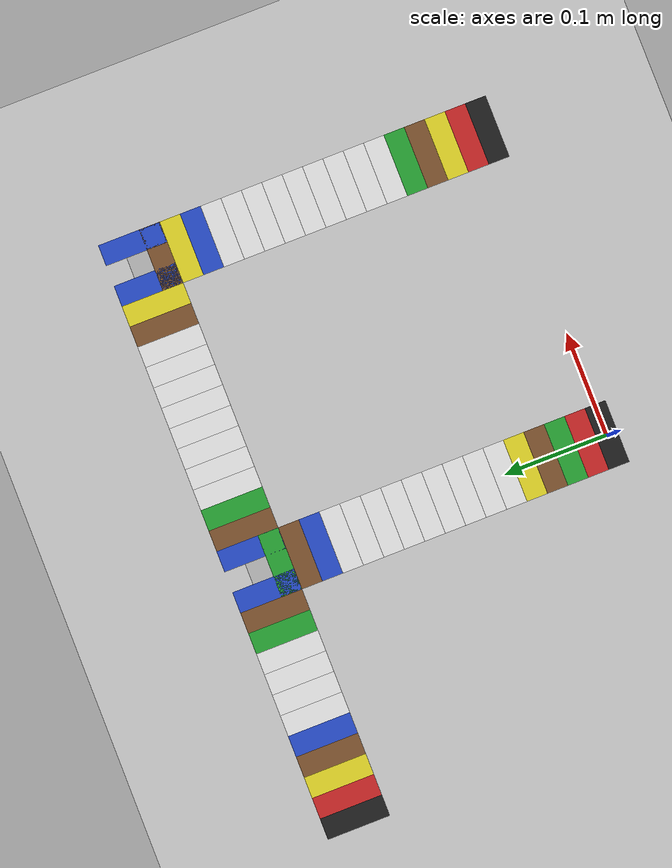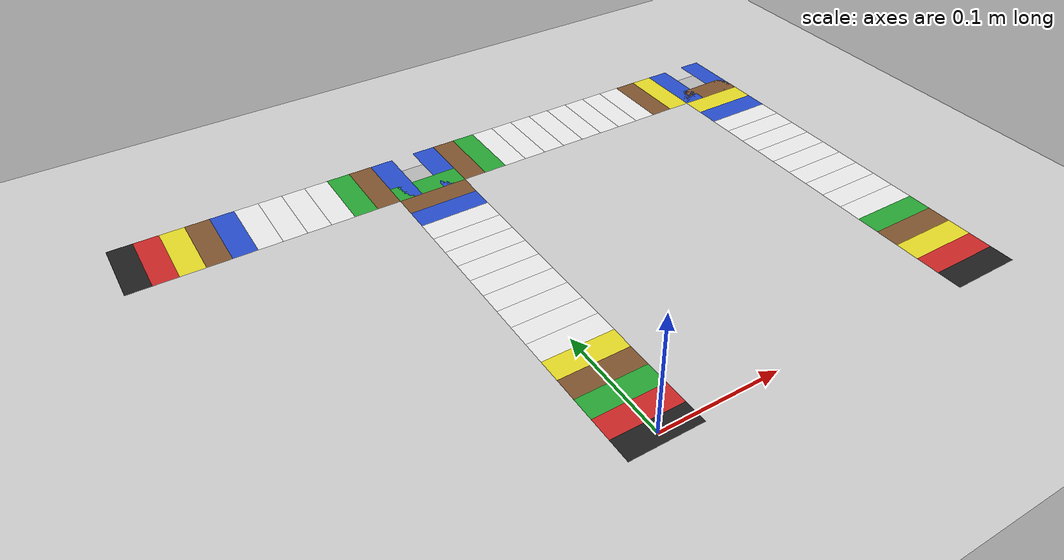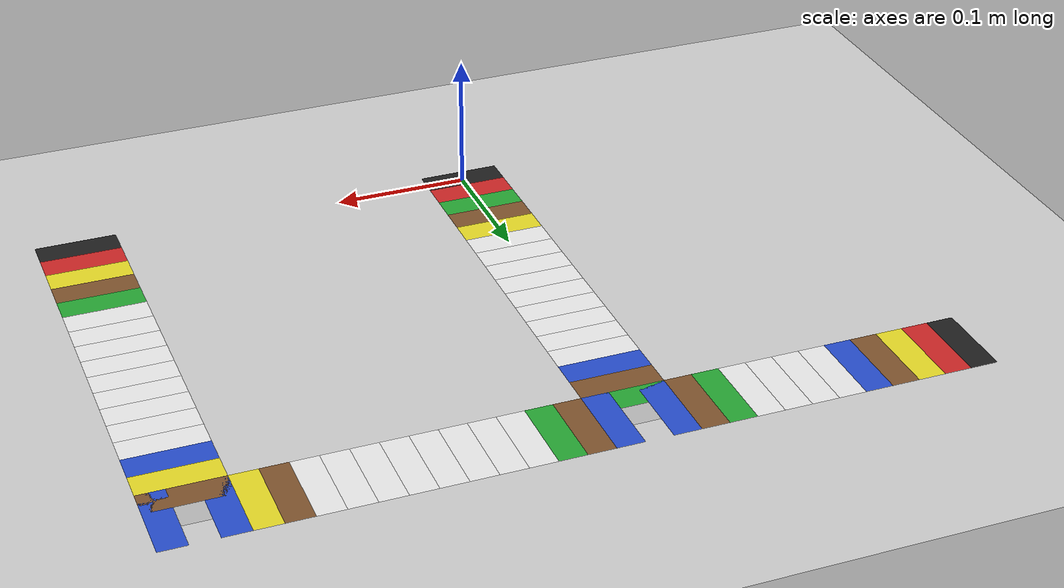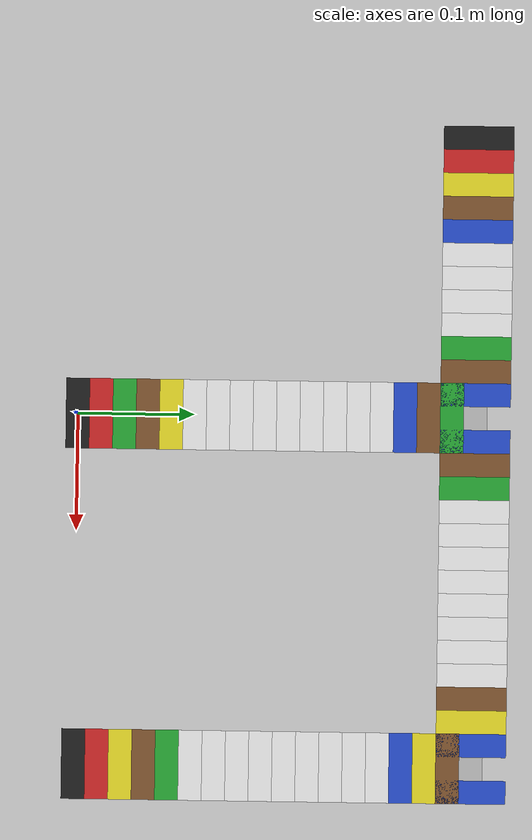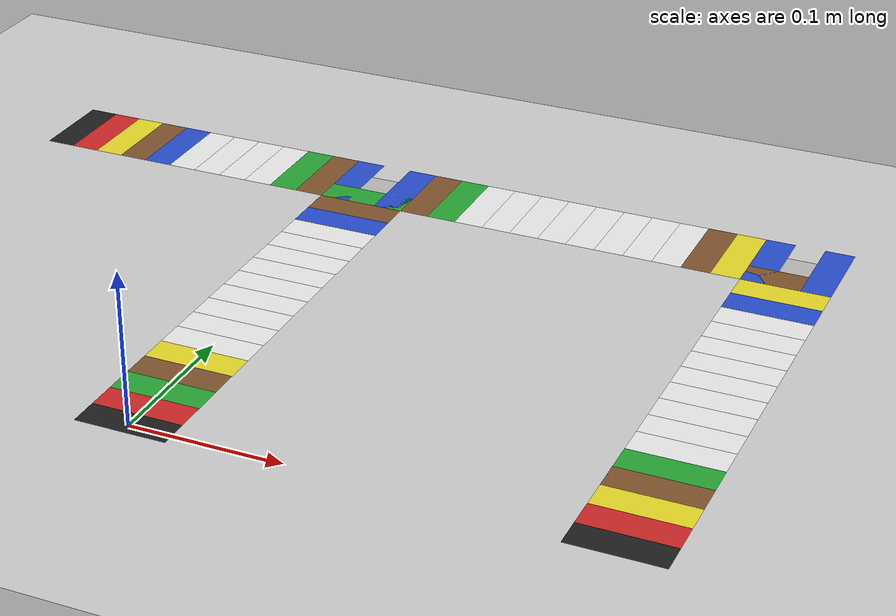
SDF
<sdf version="1.6">
 <world name="maskor_ev3_challenge">
  <model name="tileAC9">
   <pose>0 0.12 0.001 0 -0 0</pose>
   <static>1</static>
   <link name="link">
    <pose>0 0 0.001 0 -0 0</pose>
    <visual name="visual">
     <geometry><mesh><uri>model://maskor_ev3_tile/meshes/ev3_tile.dae</uri><scale>1 1 1</scale></mesh></geometry>
     <material>
      <script>
       <uri>model://maskor_ev3_tile/materials/scripts</uri>
       <uri>model://maskor_ev3_tile/materials/textures</uri>
       <name>white</name>
      </script>
     </material>
    </visual>
   </link>
  </model>
  <model name="tileAC3">
   <pose>0 0 0.001 0 -0 0</pose>
   <static>1</static>
   <link name="link">
    <pose>0 0 0.001 0 -0 0</pose>
    <visual name="visual">
     <geometry><mesh><uri>model://maskor_ev3_tile/meshes/ev3_tile.dae</uri><scale>1 1 1</scale></mesh></geometry>
     <material>
      <script>
       <uri>model://maskor_ev3_tile/materials/scripts</uri>
       <uri>model://maskor_ev3_tile/materials/textures</uri>
       <name>black</name>
      </script>
     </material>
    </visual>
   </link>
  </model>
  <model name="tileAC4">
   <pose>0 0.02 0.001 0 -0 0</pose>
   <static>1</static>
   <link name="link">
    <pose>0 0 0.001 0 -0 0</pose>
    <visual name="visual">
     <geometry><mesh><uri>model://maskor_ev3_tile/meshes/ev3_tile.dae</uri><scale>1 1 1</scale></mesh></geometry>
     <material>
      <script>
       <uri>model://maskor_ev3_tile/materials/scripts</uri>
       <uri>model://maskor_ev3_tile/materials/textures</uri>
       <name>red</name>
      </script>
     </material>
    </visual>
   </link>
  </model>
  <model name="tileAC5">
   <pose>0 0.04 0.001 0 -0 0</pose>
   <static>1</static>
   <link name="link">
    <pose>0 0 0.001 0 -0 0</pose>
    <visual name="visual">
     <geometry><mesh><uri>model://maskor_ev3_tile/meshes/ev3_tile.dae</uri><scale>1 1 1</scale></mesh></geometry>
     <material>
      <script>
       <uri>model://maskor_ev3_tile/materials/scripts</uri>
       <uri>model://maskor_ev3_tile/materials/textures</uri>
       <name>green</name>
      </script>
     </material>
    </visual>
   </link>
  </model>
  <model name="tileAC6">
   <pose>0 0.06 0.001 0 -0 0</pose>
   <static>1</static>
   <link name="link">
    <pose>0 0 0.001 0 -0 0</pose>
    <visual name="visual">
     <geometry><mesh><uri>model://maskor_ev3_tile/meshes/ev3_tile.dae</uri><scale>1 1 1</scale></mesh></geometry>
     <material>
      <script>
       <uri>model://maskor_ev3_tile/materials/scripts</uri>
       <uri>model://maskor_ev3_tile/materials/textures</uri>
       <name>brown</name>
      </script>
     </material>
    </visual>
   </link>
  </model>
  <model name="tileAC7">
   <pose>0 0.08 0.001 0 -0 0</pose>
   <static>1</static>
   <link name="link">
    <pose>0 0 0.001 0 -0 0</pose>
    <visual name="visual">
     <geometry><mesh><uri>model://maskor_ev3_tile/meshes/ev3_tile.dae</uri><scale>1 1 1</scale></mesh></geometry>
     <material>
      <script>
       <uri>model://maskor_ev3_tile/materials/scripts</uri>
       <uri>model://maskor_ev3_tile/materials/textures</uri>
       <name>yellow</name>
      </script>
     </material>
    </visual>
   </link>
  </model>
  <model name="tileAC8">
   <pose>0 0.1 0.001 0 -0 0</pose>
   <static>1</static>
   <link name="link">
    <pose>0 0 0.001 0 -0 0</pose>
    <visual name="visual">
     <geometry><mesh><uri>model://maskor_ev3_tile/meshes/ev3_tile.dae</uri><scale>1 1 1</scale></mesh></geometry>
     <material>
      <script>
       <uri>model://maskor_ev3_tile/materials/scripts</uri>
       <uri>model://maskor_ev3_tile/materials/textures</uri>
       <name>white</name>
      </script>
     </material>
    </visual>
   </link>
  </model>
  <model name="tileAC10">
   <pose>0 0.14 0.001 0 -0 0</pose>
   <static>1</static>
   <link name="link">
    <pose>0 0 0.001 0 -0 0</pose>
    <visual name="visual">
     <geometry><mesh><uri>model://maskor_ev3_tile/meshes/ev3_tile.dae</uri><scale>1 1 1</scale></mesh></geometry>
     <material>
      <script>
       <uri>model://maskor_ev3_tile/materials/scripts</uri>
       <uri>model://maskor_ev3_tile/materials/textures</uri>
       <name>white</name>
      </script>
     </material>
    </visual>
   </link>
  </model>
  <model name="tileAC11">
   <pose>0 0.16 0.001 0 -0 0</pose>
   <static>1</static>
   <link name="link">
    <pose>0 0 0.001 0 -0 0</pose>
    <visual name="visual">
     <geometry><mesh><uri>model://maskor_ev3_tile/meshes/ev3_tile.dae</uri><scale>1 1 1</scale></mesh></geometry>
     <material>
      <script>
       <uri>model://maskor_ev3_tile/materials/scripts</uri>
       <uri>model://maskor_ev3_tile/materials/textures</uri>
       <name>white</name>
      </script>
     </material>
    </visual>
   </link>
  </model>
  <model name="tileAC12">
   <pose>0 0.18 0.001 0 -0 0</pose>
   <static>1</static>
   <link name="link">
    <pose>0 0 0.001 0 -0 0</pose>
    <visual name="visual">
     <geometry><mesh><uri>model://maskor_ev3_tile/meshes/ev3_tile.dae</uri><scale>1 1 1</scale></mesh></geometry>
     <material>
      <script>
       <uri>model://maskor_ev3_tile/materials/scripts</uri>
       <uri>model://maskor_ev3_tile/materials/textures</uri>
       <name>white</name>
      </script>
     </material>
    </visual>
   </link>
  </model>
  <model name="tileAC13">
   <pose>0 0.2 0.001 0 -0 0</pose>
   <static>1</static>
   <link name="link">
    <pose>0 0 0.001 0 -0 0</pose>
    <visual name="visual">
     <geometry><mesh><uri>model://maskor_ev3_tile/meshes/ev3_tile.dae</uri><scale>1 1 1</scale></mesh></geometry>
     <material>
      <script>
       <uri>model://maskor_ev3_tile/materials/scripts</uri>
       <uri>model://maskor_ev3_tile/materials/textures</uri>
       <name>white</name>
      </script>
     </material>
    </visual>
   </link>
  </model>
  <model name="tileAC14">
   <pose>0 0.22 0.001 0 -0 0</pose>
   <static>1</static>
   <link name="link">
    <pose>0 0 0.001 0 -0 0</pose>
    <visual name="visual">
     <geometry><mesh><uri>model://maskor_ev3_tile/meshes/ev3_tile.dae</uri><scale>1 1 1</scale></mesh></geometry>
     <material>
      <script>
       <uri>model://maskor_ev3_tile/materials/scripts</uri>
       <uri>model://maskor_ev3_tile/materials/textures</uri>
       <name>white</name>
      </script>
     </material>
    </visual>
   </link>
  </model>
  <model name="tileAC15">
   <pose>0 0.24 0.001 0 -0 0</pose>
   <static>1</static>
   <link name="link">
    <pose>0 0 0.001 0 -0 0</pose>
    <visual name="visual">
     <geometry><mesh><uri>model://maskor_ev3_tile/meshes/ev3_tile.dae</uri><scale>1 1 1</scale></mesh></geometry>
     <material>
      <script>
       <uri>model://maskor_ev3_tile/materials/scripts</uri>
       <uri>model://maskor_ev3_tile/materials/textures</uri>
       <name>white</name>
      </script>
     </material>
    </visual>
   </link>
  </model>
  <model name="tileAC16">
   <pose>0 0.26 0.001 0 -0 0</pose>
   <static>1</static>
   <link name="link">
    <pose>0 0 0.001 0 -0 0</pose>
    <visual name="visual">
     <geometry><mesh><uri>model://maskor_ev3_tile/meshes/ev3_tile.dae</uri><scale>1 1 1</scale></mesh></geometry>
     <material>
      <script>
       <uri>model://maskor_ev3_tile/materials/scripts</uri>
       <uri>model://maskor_ev3_tile/materials/textures</uri>
       <name>white</name>
      </script>
     </material>
    </visual>
   </link>
  </model>
  <model name="tileAC17">
   <pose>0 0.28 0.001 0 -0 0</pose>
   <static>1</static>
   <link name="link">
    <pose>0 0 0.001 0 -0 0</pose>
    <visual name="visual">
     <geometry><mesh><uri>model://maskor_ev3_tile/meshes/ev3_tile.dae</uri><scale>1 1 1</scale></mesh></geometry>
     <material>
      <script>
       <uri>model://maskor_ev3_tile/materials/scripts</uri>
       <uri>model://maskor_ev3_tile/materials/textures</uri>
       <name>blue</name>
      </script>
     </material>
    </visual>
   </link>
  </model>
  <model name="tileAC18">
   <pose>0 0.3 0.001 0 -0 0</pose>
   <static>1</static>
   <link name="link">
    <pose>0 0 0.001 0 -0 0</pose>
    <visual name="visual">
     <geometry><mesh><uri>model://maskor_ev3_tile/meshes/ev3_tile.dae</uri><scale>1 1 1</scale></mesh></geometry>
     <material>
      <script>
       <uri>model://maskor_ev3_tile/materials/scripts</uri>
       <uri>model://maskor_ev3_tile/materials/textures</uri>
       <name>brown</name>
      </script>
     </material>
    </visual>
   </link>
  </model>
  <model name="tileAC19">
   <pose>0 0.32 0.001 0 -0 0</pose>
   <static>1</static>
   <link name="link">
    <pose>0 0 0.001 0 -0 0</pose>
    <visual name="visual">
     <geometry><mesh><uri>model://maskor_ev3_tile/meshes/ev3_tile.dae</uri><scale>1 1 1</scale></mesh></geometry>
     <material>
      <script>
       <uri>model://maskor_ev3_tile/materials/scripts</uri>
       <uri>model://maskor_ev3_tile/materials/textures</uri>
       <name>green</name>
      </script>
     </material>
    </visual>
   </link>
  </model>
  <model name="tileAC20">
   <pose>0 0.34 0.002 0 -0 0</pose>
   <static>1</static>
   <link name="link">
    <visual name="visual">
     <geometry>
      <mesh><uri>model://maskor_ev3_tile_center/meshes/ev3_tile_center.dae</uri><scale>1 1 1</scale></mesh>
     </geometry>
     <material>
      <script>
       <uri>model://maskor_ev3_tile_center/materials/scripts</uri>
       <uri>model://maskor_ev3_tile_center/materials/textures</uri>
       <name>center</name>
      </script>
     </material>
    </visual>
   </link>
  </model>
  <model name="tileBD3">
   <pose>0.3 0 0.001 0 -0 0</pose>
   <static>1</static>
   <link name="link">
    <pose>0 0 0.001 0 -0 0</pose>
    <visual name="visual">
     <geometry><mesh><uri>model://maskor_ev3_tile/meshes/ev3_tile.dae</uri><scale>1 1 1</scale></mesh></geometry>
     <material>
      <script>
       <uri>model://maskor_ev3_tile/materials/scripts</uri>
       <uri>model://maskor_ev3_tile/materials/textures</uri>
       <name>black</name>
      </script>
     </material>
    </visual>
   </link>
  </model>
  <model name="tileBD4">
   <pose>0.3 0.02 0.001 0 -0 0</pose>
   <static>1</static>
   <link name="link">
    <pose>0 0 0.001 0 -0 0</pose>
    <visual name="visual">
     <geometry><mesh><uri>model://maskor_ev3_tile/meshes/ev3_tile.dae</uri><scale>1 1 1</scale></mesh></geometry>
     <material>
      <script>
       <uri>model://maskor_ev3_tile/materials/scripts</uri>
       <uri>model://maskor_ev3_tile/materials/textures</uri>
       <name>red</name>
      </script>
     </material>
    </visual>
   </link>
  </model>
  <model name="tileBD5">
   <pose>0.3 0.04 0.001 0 -0 0</pose>
   <static>1</static>
   <link name="link">
    <pose>0 0 0.001 0 -0 0</pose>
    <visual name="visual">
     <geometry><mesh><uri>model://maskor_ev3_tile/meshes/ev3_tile.dae</uri><scale>1 1 1</scale></mesh></geometry>
     <material>
      <script>
       <uri>model://maskor_ev3_tile/materials/scripts</uri>
       <uri>model://maskor_ev3_tile/materials/textures</uri>
       <name>yellow</name>
      </script>
     </material>
    </visual>
   </link>
  </model>
  <model name="tileBD6">
   <pose>0.3 0.06 0.001 0 -0 0</pose>
   <static>1</static>
   <link name="link">
    <pose>0 0 0.001 0 -0 0</pose>
    <visual name="visual">
     <geometry><mesh><uri>model://maskor_ev3_tile/meshes/ev3_tile.dae</uri><scale>1 1 1</scale></mesh></geometry>
     <material>
      <script>
       <uri>model://maskor_ev3_tile/materials/scripts</uri>
       <uri>model://maskor_ev3_tile/materials/textures</uri>
       <name>brown</name>
      </script>
     </material>
    </visual>
   </link>
  </model>
  <model name="tileBD7">
   <pose>0.3 0.08 0.001 0 -0 0</pose>
   <static>1</static>
   <link name="link">
    <pose>0 0 0.001 0 -0 0</pose>
    <visual name="visual">
     <geometry><mesh><uri>model://maskor_ev3_tile/meshes/ev3_tile.dae</uri><scale>1 1 1</scale></mesh></geometry>
     <material>
      <script>
       <uri>model://maskor_ev3_tile/materials/scripts</uri>
       <uri>model://maskor_ev3_tile/materials/textures</uri>
       <name>green</name>
      </script>
     </material>
    </visual>
   </link>
  </model>
  <model name="tileBD8">
   <pose>0.3 0.1 0.001 0 -0 0</pose>
   <static>1</static>
   <link name="link">
    <pose>0 0 0.001 0 -0 0</pose>
    <visual name="visual">
     <geometry><mesh><uri>model://maskor_ev3_tile/meshes/ev3_tile.dae</uri><scale>1 1 1</scale></mesh></geometry>
     <material>
      <script>
       <uri>model://maskor_ev3_tile/materials/scripts</uri>
       <uri>model://maskor_ev3_tile/materials/textures</uri>
       <name>white</name>
      </script>
     </material>
    </visual>
   </link>
  </model>
  <model name="tileBD9">
   <pose>0.3 0.12 0.001 0 -0 0</pose>
   <static>1</static>
   <link name="link">
    <pose>0 0 0.001 0 -0 0</pose>
    <visual name="visual">
     <geometry><mesh><uri>model://maskor_ev3_tile/meshes/ev3_tile.dae</uri><scale>1 1 1</scale></mesh></geometry>
     <material>
      <script>
       <uri>model://maskor_ev3_tile/materials/scripts</uri>
       <uri>model://maskor_ev3_tile/materials/textures</uri>
       <name>white</name>
      </script>
     </material>
    </visual>
   </link>
  </model>
  <model name="tileBD10">
   <pose>0.3 0.14 0.001 0 -0 0</pose>
   <static>1</static>
   <link name="link">
    <pose>0 0 0.001 0 -0 0</pose>
    <visual name="visual">
     <geometry><mesh><uri>model://maskor_ev3_tile/meshes/ev3_tile.dae</uri><scale>1 1 1</scale></mesh></geometry>
     <material>
      <script>
       <uri>model://maskor_ev3_tile/materials/scripts</uri>
       <uri>model://maskor_ev3_tile/materials/textures</uri>
       <name>white</name>
      </script>
     </material>
    </visual>
   </link>
  </model>
  <model name="tileBD11">
   <pose>0.3 0.16 0.001 0 -0 0</pose>
   <static>1</static>
   <link name="link">
    <pose>0 0 0.001 0 -0 0</pose>
    <visual name="visual">
     <geometry><mesh><uri>model://maskor_ev3_tile/meshes/ev3_tile.dae</uri><scale>1 1 1</scale></mesh></geometry>
     <material>
      <script>
       <uri>model://maskor_ev3_tile/materials/scripts</uri>
       <uri>model://maskor_ev3_tile/materials/textures</uri>
       <name>white</name>
      </script>
     </material>
    </visual>
   </link>
  </model>
  <model name="tileBD12">
   <pose>0.3 0.18 0.001 0 -0 0</pose>
   <static>1</static>
   <link name="link">
    <pose>0 0 0.001 0 -0 0</pose>
    <visual name="visual">
     <geometry><mesh><uri>model://maskor_ev3_tile/meshes/ev3_tile.dae</uri><scale>1 1 1</scale></mesh></geometry>
     <material>
      <script>
       <uri>model://maskor_ev3_tile/materials/scripts</uri>
       <uri>model://maskor_ev3_tile/materials/textures</uri>
       <name>white</name>
      </script>
     </material>
    </visual>
   </link>
  </model>
  <model name="tileBD13">
   <pose>0.3 0.2 0.001 0 -0 0</pose>
   <static>1</static>
   <link name="link">
    <pose>0 0 0.001 0 -0 0</pose>
    <visual name="visual">
     <geometry><mesh><uri>model://maskor_ev3_tile/meshes/ev3_tile.dae</uri><scale>1 1 1</scale></mesh></geometry>
     <material>
      <script>
       <uri>model://maskor_ev3_tile/materials/scripts</uri>
       <uri>model://maskor_ev3_tile/materials/textures</uri>
       <name>white</name>
      </script>
     </material>
    </visual>
   </link>
  </model>
  <model name="tileBD14">
   <pose>0.3 0.22 0.001 0 -0 0</pose>
   <static>1</static>
   <link name="link">
    <pose>0 0 0.001 0 -0 0</pose>
    <visual name="visual">
     <geometry><mesh><uri>model://maskor_ev3_tile/meshes/ev3_tile.dae</uri><scale>1 1 1</scale></mesh></geometry>
     <material>
      <script>
       <uri>model://maskor_ev3_tile/materials/scripts</uri>
       <uri>model://maskor_ev3_tile/materials/textures</uri>
       <name>white</name>
      </script>
     </material>
    </visual>
   </link>
  </model>
  <model name="tileBD15">
   <pose>0.3 0.24 0.001 0 -0 0</pose>
   <static>1</static>
   <link name="link">
    <pose>0 0 0.001 0 -0 0</pose>
    <visual name="visual">
     <geometry><mesh><uri>model://maskor_ev3_tile/meshes/ev3_tile.dae</uri><scale>1 1 1</scale></mesh></geometry>
     <material>
      <script>
       <uri>model://maskor_ev3_tile/materials/scripts</uri>
       <uri>model://maskor_ev3_tile/materials/textures</uri>
       <name>white</name>
      </script>
     </material>
    </visual>
   </link>
  </model>
  <model name="tileBD16">
   <pose>0.3 0.26 0.001 0 -0 0</pose>
   <static>1</static>
   <link name="link">
    <pose>0 0 0.001 0 -0 0</pose>
    <visual name="visual">
     <geometry><mesh><uri>model://maskor_ev3_tile/meshes/ev3_tile.dae</uri><scale>1 1 1</scale></mesh></geometry>
     <material>
      <script>
       <uri>model://maskor_ev3_tile/materials/scripts</uri>
       <uri>model://maskor_ev3_tile/materials/textures</uri>
       <name>white</name>
      </script>
     </material>
    </visual>
   </link>
  </model>
  <model name="tileBD17">
   <pose>0.3 0.28 0.001 0 -0 0</pose>
   <static>1</static>
   <link name="link">
    <pose>0 0 0.001 0 -0 0</pose>
    <visual name="visual">
     <geometry><mesh><uri>model://maskor_ev3_tile/meshes/ev3_tile.dae</uri><scale>1 1 1</scale></mesh></geometry>
     <material>
      <script>
       <uri>model://maskor_ev3_tile/materials/scripts</uri>
       <uri>model://maskor_ev3_tile/materials/textures</uri>
       <name>blue</name>
      </script>
     </material>
    </visual>
   </link>
  </model>
  <model name="tileBD18">
   <pose>0.3 0.3 0.001 0 -0 0</pose>
   <static>1</static>
   <link name="link">
    <pose>0 0 0.001 0 -0 0</pose>
    <visual name="visual">
     <geometry><mesh><uri>model://maskor_ev3_tile/meshes/ev3_tile.dae</uri><scale>1 1 1</scale></mesh></geometry>
     <material>
      <script>
       <uri>model://maskor_ev3_tile/materials/scripts</uri>
       <uri>model://maskor_ev3_tile/materials/textures</uri>
       <name>yellow</name>
      </script>
     </material>
    </visual>
   </link>
  </model>
  <model name="tileBD19">
   <pose>0.3 0.32 0.001 0 -0 0</pose>
   <static>1</static>
   <link name="link">
    <pose>0 0 0.001 0 -0 0</pose>
    <visual name="visual">
     <geometry><mesh><uri>model://maskor_ev3_tile/meshes/ev3_tile.dae</uri><scale>1 1 1</scale></mesh></geometry>
     <material>
      <script>
       <uri>model://maskor_ev3_tile/materials/scripts</uri>
       <uri>model://maskor_ev3_tile/materials/textures</uri>
       <name>brown</name>
      </script>
     </material>
    </visual>
   </link>
  </model>
  <model name="tileBD20">
   <pose>0.3 0.34 0.002 0 -0 0</pose>
   <static>1</static>
   <link name="link">
    <visual name="visual">
     <geometry>
      <mesh><uri>model://maskor_ev3_tile_center/meshes/ev3_tile_center.dae</uri><scale>1 1 1</scale></mesh>
     </geometry>
     <material>
      <script>
       <uri>model://maskor_ev3_tile_center/materials/scripts</uri>
       <uri>model://maskor_ev3_tile_center/materials/textures</uri>
       <name>center</name>
      </script>
     </material>
    </visual>
   </link>
  </model>
  <model name="tileEF3">
   <pose>-0.24 0.34 0.001 0 -0 1.5708</pose>
   <static>1</static>
   <link name="link">
    <pose>0 0 0.001 0 -0 0</pose>
    <visual name="visual">
     <geometry><mesh><uri>model://maskor_ev3_tile/meshes/ev3_tile.dae</uri><scale>1 1 1</scale></mesh></geometry>
     <material>
      <script>
       <uri>model://maskor_ev3_tile/materials/scripts</uri>
       <uri>model://maskor_ev3_tile/materials/textures</uri>
       <name>black</name>
      </script>
     </material>
    </visual>
   </link>
  </model>
  <model name="tileEF4">
   <pose>-0.22 0.34 0.001 0 -0 1.5708</pose>
   <static>1</static>
   <link name="link">
    <pose>0 0 0.001 0 -0 0</pose>
    <visual name="visual">
     <geometry><mesh><uri>model://maskor_ev3_tile/meshes/ev3_tile.dae</uri><scale>1 1 1</scale></mesh></geometry>
     <material>
      <script>
       <uri>model://maskor_ev3_tile/materials/scripts</uri>
       <uri>model://maskor_ev3_tile/materials/textures</uri>
       <name>red</name>
      </script>
     </material>
    </visual>
   </link>
  </model>
  <model name="tileEF5">
   <pose>-0.2 0.34 0.001 0 -0 1.5708</pose>
   <static>1</static>
   <link name="link">
    <pose>0 0 0.001 0 -0 0</pose>
    <visual name="visual">
     <geometry><mesh><uri>model://maskor_ev3_tile/meshes/ev3_tile.dae</uri><scale>1 1 1</scale></mesh></geometry>
     <material>
      <script>
       <uri>model://maskor_ev3_tile/materials/scripts</uri>
       <uri>model://maskor_ev3_tile/materials/textures</uri>
       <name>yellow</name>
      </script>
     </material>
    </visual>
   </link>
  </model>
  <model name="tileEF6">
   <pose>-0.18 0.34 0.001 0 -0 1.5708</pose>
   <static>1</static>
   <link name="link">
    <pose>0 0 0.001 0 -0 0</pose>
    <visual name="visual">
     <geometry><mesh><uri>model://maskor_ev3_tile/meshes/ev3_tile.dae</uri><scale>1 1 1</scale></mesh></geometry>
     <material>
      <script>
       <uri>model://maskor_ev3_tile/materials/scripts</uri>
       <uri>model://maskor_ev3_tile/materials/textures</uri>
       <name>brown</name>
      </script>
     </material>
    </visual>
   </link>
  </model>
  <model name="tileEF10">
   <pose>-0.1 0.34 0.001 0 -0 1.5708</pose>
   <static>1</static>
   <link name="link">
    <pose>0 0 0.001 0 -0 0</pose>
    <visual name="visual">
     <geometry><mesh><uri>model://maskor_ev3_tile/meshes/ev3_tile.dae</uri><scale>1 1 1</scale></mesh></geometry>
     <material>
      <script>
       <uri>model://maskor_ev3_tile/materials/scripts</uri>
       <uri>model://maskor_ev3_tile/materials/textures</uri>
       <name>white</name>
      </script>
     </material>
    </visual>
   </link>
  </model>
  <model name="tileEF7">
   <pose>-0.16 0.34 0.001 0 -0 1.5708</pose>
   <static>1</static>
   <link name="link">
    <pose>0 0 0.001 0 -0 0</pose>
    <visual name="visual">
     <geometry><mesh><uri>model://maskor_ev3_tile/meshes/ev3_tile.dae</uri><scale>1 1 1</scale></mesh></geometry>
     <material>
      <script>
       <uri>model://maskor_ev3_tile/materials/scripts</uri>
       <uri>model://maskor_ev3_tile/materials/textures</uri>
       <name>blue</name>
      </script>
     </material>
    </visual>
   </link>
  </model>
  <model name="tileEF8">
   <pose>-0.14 0.34 0.001 0 -0 1.5708</pose>
   <static>1</static>
   <link name="link">
    <pose>0 0 0.001 0 -0 0</pose>
    <visual name="visual">
     <geometry><mesh><uri>model://maskor_ev3_tile/meshes/ev3_tile.dae</uri><scale>1 1 1</scale></mesh></geometry>
     <material>
      <script>
       <uri>model://maskor_ev3_tile/materials/scripts</uri>
       <uri>model://maskor_ev3_tile/materials/textures</uri>
       <name>white</name>
      </script>
     </material>
    </visual>
   </link>
  </model>
  <model name="tileEF9">
   <pose>-0.12 0.34 0.001 0 -0 1.5708</pose>
   <static>1</static>
   <link name="link">
    <pose>0 0 0.001 0 -0 0</pose>
    <visual name="visual">
     <geometry><mesh><uri>model://maskor_ev3_tile/meshes/ev3_tile.dae</uri><scale>1 1 1</scale></mesh></geometry>
     <material>
      <script>
       <uri>model://maskor_ev3_tile/materials/scripts</uri>
       <uri>model://maskor_ev3_tile/materials/textures</uri>
       <name>white</name>
      </script>
     </material>
    </visual>
   </link>
  </model>
  <model name="tileEF11">
   <pose>-0.08 0.34 0.001 0 -0 1.5708</pose>
   <static>1</static>
   <link name="link">
    <pose>0 0 0.001 0 -0 0</pose>
    <visual name="visual">
     <geometry><mesh><uri>model://maskor_ev3_tile/meshes/ev3_tile.dae</uri><scale>1 1 1</scale></mesh></geometry>
     <material>
      <script>
       <uri>model://maskor_ev3_tile/materials/scripts</uri>
       <uri>model://maskor_ev3_tile/materials/textures</uri>
       <name>white</name>
      </script>
     </material>
    </visual>
   </link>
  </model>
  <model name="tileEF12">
   <pose>-0.06 0.34 0.001 0 -0 1.5708</pose>
   <static>1</static>
   <link name="link">
    <pose>0 0 0.001 0 -0 0</pose>
    <visual name="visual">
     <geometry><mesh><uri>model://maskor_ev3_tile/meshes/ev3_tile.dae</uri><scale>1 1 1</scale></mesh></geometry>
     <material>
      <script>
       <uri>model://maskor_ev3_tile/materials/scripts</uri>
       <uri>model://maskor_ev3_tile/materials/textures</uri>
       <name>green</name>
      </script>
     </material>
    </visual>
   </link>
  </model>
  <model name="tileEF13">
   <pose>-0.04 0.34 0.001 0 -0 1.5708</pose>
   <static>1</static>
   <link name="link">
    <pose>0 0 0.001 0 -0 0</pose>
    <visual name="visual">
     <geometry><mesh><uri>model://maskor_ev3_tile/meshes/ev3_tile.dae</uri><scale>1 1 1</scale></mesh></geometry>
     <material>
      <script>
       <uri>model://maskor_ev3_tile/materials/scripts</uri>
       <uri>model://maskor_ev3_tile/materials/textures</uri>
       <name>brown</name>
      </script>
     </material>
    </visual>
   </link>
  </model>
  <model name="tileEF14">
   <pose>-0.02 0.34 0.001 0 -0 1.5708</pose>
   <static>1</static>
   <link name="link">
    <pose>0 0 0.001 0 -0 0</pose>
    <visual name="visual">
     <geometry><mesh><uri>model://maskor_ev3_tile/meshes/ev3_tile.dae</uri><scale>1 1 1</scale></mesh></geometry>
     <material>
      <script>
       <uri>model://maskor_ev3_tile/materials/scripts</uri>
       <uri>model://maskor_ev3_tile/materials/textures</uri>
       <name>blue</name>
      </script>
     </material>
    </visual>
   </link>
  </model>
  <model name="tileEF16">
   <pose>0.02 0.34 0.001 0 -0 1.5708</pose>
   <static>1</static>
   <link name="link">
    <pose>0 0 0.001 0 -0 0</pose>
    <visual name="visual">
     <geometry><mesh><uri>model://maskor_ev3_tile/meshes/ev3_tile.dae</uri><scale>1 1 1</scale></mesh></geometry>
     <material>
      <script>
       <uri>model://maskor_ev3_tile/materials/scripts</uri>
       <uri>model://maskor_ev3_tile/materials/textures</uri>
       <name>blue</name>
      </script>
     </material>
    </visual>
   </link>
  </model>
  <model name="tileEF17">
   <pose>0.04 0.34 0.001 0 -0 1.5708</pose>
   <static>1</static>
   <link name="link">
    <pose>0 0 0.001 0 -0 0</pose>
    <visual name="visual">
     <geometry><mesh><uri>model://maskor_ev3_tile/meshes/ev3_tile.dae</uri><scale>1 1 1</scale></mesh></geometry>
     <material>
      <script>
       <uri>model://maskor_ev3_tile/materials/scripts</uri>
       <uri>model://maskor_ev3_tile/materials/textures</uri>
       <name>brown</name>
      </script>
     </material>
    </visual>
   </link>
  </model>
  <model name="tileEF18">
   <pose>0.06 0.34 0.001 0 -0 1.5708</pose>
   <static>1</static>
   <link name="link">
    <pose>0 0 0.001 0 -0 0</pose>
    <visual name="visual">
     <geometry><mesh><uri>model://maskor_ev3_tile/meshes/ev3_tile.dae</uri><scale>1 1 1</scale></mesh></geometry>
     <material>
      <script>
       <uri>model://maskor_ev3_tile/materials/scripts</uri>
       <uri>model://maskor_ev3_tile/materials/textures</uri>
       <name>green</name>
      </script>
     </material>
    </visual>
   </link>
  </model>
  <model name="tileEF19">
   <pose>0.08 0.34 0.001 0 -0 1.5708</pose>
   <static>1</static>
   <link name="link">
    <pose>0 0 0.001 0 -0 0</pose>
    <visual name="visual">
     <geometry><mesh><uri>model://maskor_ev3_tile/meshes/ev3_tile.dae</uri><scale>1 1 1</scale></mesh></geometry>
     <material>
      <script>
       <uri>model://maskor_ev3_tile/materials/scripts</uri>
       <uri>model://maskor_ev3_tile/materials/textures</uri>
       <name>white</name>
      </script>
     </material>
    </visual>
   </link>
  </model>
  <model name="tileEF20">
   <pose>0.1 0.34 0.001 0 -0 1.5708</pose>
   <static>1</static>
   <link name="link">
    <pose>0 0 0.001 0 -0 0</pose>
    <visual name="visual">
     <geometry><mesh><uri>model://maskor_ev3_tile/meshes/ev3_tile.dae</uri><scale>1 1 1</scale></mesh></geometry>
     <material>
      <script>
       <uri>model://maskor_ev3_tile/materials/scripts</uri>
       <uri>model://maskor_ev3_tile/materials/textures</uri>
       <name>white</name>
      </script>
     </material>
    </visual>
   </link>
  </model>
  <model name="tileEF21">
   <pose>0.12 0.34 0.001 0 -0 1.5708</pose>
   <static>1</static>
   <link name="link">
    <pose>0 0 0.001 0 -0 0</pose>
    <visual name="visual">
     <geometry><mesh><uri>model://maskor_ev3_tile/meshes/ev3_tile.dae</uri><scale>1 1 1</scale></mesh></geometry>
     <material>
      <script>
       <uri>model://maskor_ev3_tile/materials/scripts</uri>
       <uri>model://maskor_ev3_tile/materials/textures</uri>
       <name>white</name>
      </script>
     </material>
    </visual>
   </link>
  </model>
  <model name="tileEF22">
   <pose>0.14 0.34 0.001 0 -0 1.5708</pose>
   <static>1</static>
   <link name="link">
    <pose>0 0 0.001 0 -0 0</pose>
    <visual name="visual">
     <geometry><mesh><uri>model://maskor_ev3_tile/meshes/ev3_tile.dae</uri><scale>1 1 1</scale></mesh></geometry>
     <material>
      <script>
       <uri>model://maskor_ev3_tile/materials/scripts</uri>
       <uri>model://maskor_ev3_tile/materials/textures</uri>
       <name>white</name>
      </script>
     </material>
    </visual>
   </link>
  </model>
  <model name="tileEF23">
   <pose>0.16 0.34 0.001 0 -0 1.5708</pose>
   <static>1</static>
   <link name="link">
    <pose>0 0 0.001 0 -0 0</pose>
    <visual name="visual">
     <geometry><mesh><uri>model://maskor_ev3_tile/meshes/ev3_tile.dae</uri><scale>1 1 1</scale></mesh></geometry>
     <material>
      <script>
       <uri>model://maskor_ev3_tile/materials/scripts</uri>
       <uri>model://maskor_ev3_tile/materials/textures</uri>
       <name>white</name>
      </script>
     </material>
    </visual>
   </link>
  </model>
  <model name="tileEF24">
   <pose>0.18 0.34 0.001 0 -0 1.5708</pose>
   <static>1</static>
   <link name="link">
    <pose>0 0 0.001 0 -0 0</pose>
    <visual name="visual">
     <geometry><mesh><uri>model://maskor_ev3_tile/meshes/ev3_tile.dae</uri><scale>1 1 1</scale></mesh></geometry>
     <material>
      <script>
       <uri>model://maskor_ev3_tile/materials/scripts</uri>
       <uri>model://maskor_ev3_tile/materials/textures</uri>
       <name>white</name>
      </script>
     </material>
    </visual>
   </link>
  </model>
  <model name="tileEF25">
   <pose>0.2 0.34 0.001 0 -0 1.5708</pose>
   <static>1</static>
   <link name="link">
    <pose>0 0 0.001 0 -0 0</pose>
    <visual name="visual">
     <geometry><mesh><uri>model://maskor_ev3_tile/meshes/ev3_tile.dae</uri><scale>1 1 1</scale></mesh></geometry>
     <material>
      <script>
       <uri>model://maskor_ev3_tile/materials/scripts</uri>
       <uri>model://maskor_ev3_tile/materials/textures</uri>
       <name>white</name>
      </script>
     </material>
    </visual>
   </link>
  </model>
  <model name="tileEF26">
   <pose>0.22 0.34 0.001 0 -0 1.5708</pose>
   <static>1</static>
   <link name="link">
    <pose>0 0 0.001 0 -0 0</pose>
    <visual name="visual">
     <geometry><mesh><uri>model://maskor_ev3_tile/meshes/ev3_tile.dae</uri><scale>1 1 1</scale></mesh></geometry>
     <material>
      <script>
       <uri>model://maskor_ev3_tile/materials/scripts</uri>
       <uri>model://maskor_ev3_tile/materials/textures</uri>
       <name>white</name>
      </script>
     </material>
    </visual>
   </link>
  </model>
  <model name="tileEF27">
   <pose>0.24 0.34 0.001 0 -0 1.5708</pose>
   <static>1</static>
   <link name="link">
    <pose>0 0 0.001 0 -0 0</pose>
    <visual name="visual">
     <geometry><mesh><uri>model://maskor_ev3_tile/meshes/ev3_tile.dae</uri><scale>1 1 1</scale></mesh></geometry>
     <material>
      <script>
       <uri>model://maskor_ev3_tile/materials/scripts</uri>
       <uri>model://maskor_ev3_tile/materials/textures</uri>
       <name>brown</name>
      </script>
     </material>
    </visual>
   </link>
  </model>
  <model name="tileEF28">
   <pose>0.26 0.34 0.001 0 -0 1.5708</pose>
   <static>1</static>
   <link name="link">
    <pose>0 0 0.001 0 -0 0</pose>
    <visual name="visual">
     <geometry><mesh><uri>model://maskor_ev3_tile/meshes/ev3_tile.dae</uri><scale>1 1 1</scale></mesh></geometry>
     <material>
      <script>
       <uri>model://maskor_ev3_tile/materials/scripts</uri>
       <uri>model://maskor_ev3_tile/materials/textures</uri>
       <name>yellow</name>
      </script>
     </material>
    </visual>
   </link>
  </model>
  <model name="tileEF29">
   <pose>0.28 0.34 0.001 0 -0 1.5708</pose>
   <static>1</static>
   <link name="link">
    <pose>0 0 0.001 0 -0 0</pose>
    <visual name="visual">
     <geometry><mesh><uri>model://maskor_ev3_tile/meshes/ev3_tile.dae</uri><scale>1 1 1</scale></mesh></geometry>
     <material>
      <script>
       <uri>model://maskor_ev3_tile/materials/scripts</uri>
       <uri>model://maskor_ev3_tile/materials/textures</uri>
       <name>blue</name>
      </script>
     </material>
    </visual>
   </link>
  </model>
  <model name="tileEF31">
   <pose>0.32 0.34 0.001 0 -0 1.5708</pose>
   <static>1</static>
   <link name="link">
    <pose>0 0 0.001 0 -0 0</pose>
    <visual name="visual">
     <geometry><mesh><uri>model://maskor_ev3_tile/meshes/ev3_tile.dae</uri><scale>1 1 1</scale></mesh></geometry>
     <material>
      <script>
       <uri>model://maskor_ev3_tile/materials/scripts</uri>
       <uri>model://maskor_ev3_tile/materials/textures</uri>
       <name>blue</name>
      </script>
     </material>
    </visual>
   </link>
  </model>
  <model name="ground_plane">
   <static>1</static>
   <link name="link">
    <collision name="collision">
     <geometry><plane><normal>0 0 1</normal><size>100 100</size></plane></geometry>
     <surface><friction><ode><mu>100</mu><mu2>50</mu2></ode></friction></surface>
    </collision>
    <visual name="visual">
     <cast_shadows>0</cast_shadows>
     <geometry><plane><normal>0 0 1</normal><size>100 100</size></plane></geometry>
     <material>
      <script><uri>file://media/materials/scripts/gazebo.material</uri><name>Gazebo/Grey</name></script>
     </material>
    </visual>
   </link>
   <pose>0.114931 0.220781 0 0 -0 0</pose>
  </model>
 </world>
</sdf>
